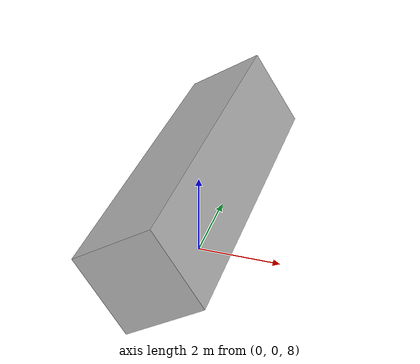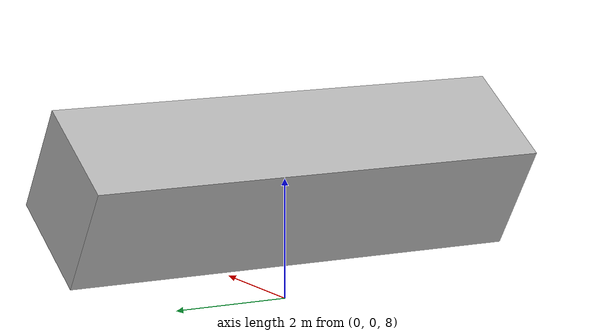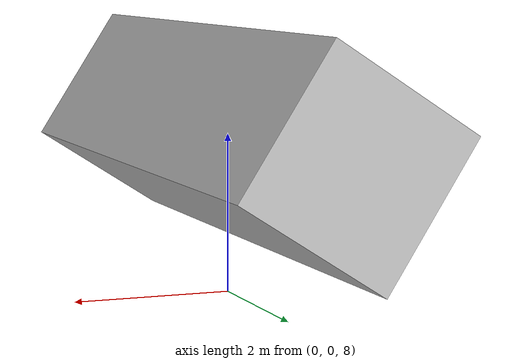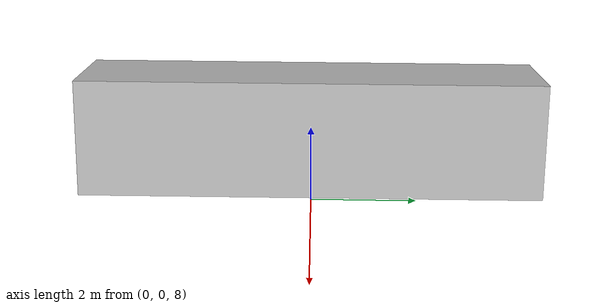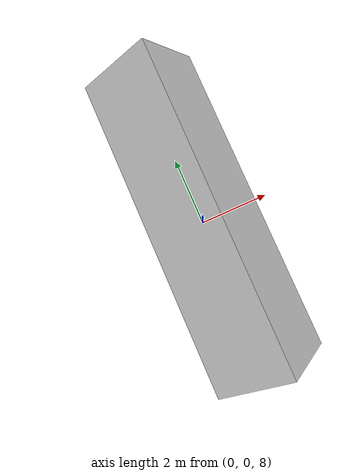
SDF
<?xml version="1.0" ?>
<sdf version="1.6">
  <model name="Brazil">
    <link name="link">
      <pose>0 0 10 0 1 0</pose>
      <collision name="collision">
        <geometry>
          <box>
            <size>2 8 2</size>
          </box>
        </geometry>
      </collision>
      <visual name="visual">
        <geometry>
          <box>
            <size>2 8 2</size>
          </box>
        </geometry>
        <material>
          <script>
            <uri>model://brazil/materials/scripts</uri>
            <uri>model://brazil/materials/textures</uri>
            <name>Text/Brazil</name>
          </script>
        </material>
      </visual>
    </link>
  </model>
</sdf>
